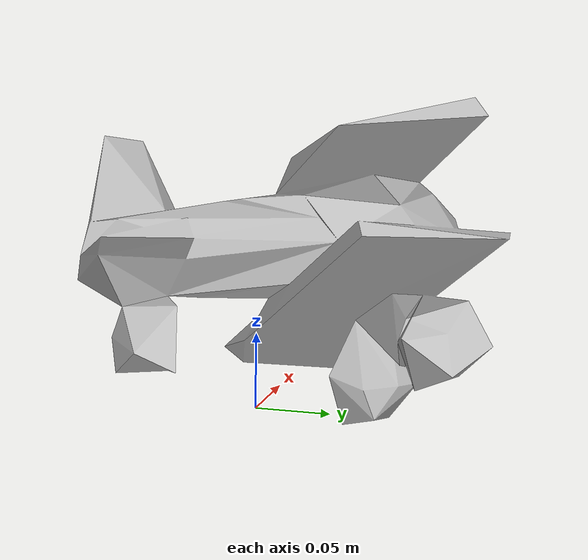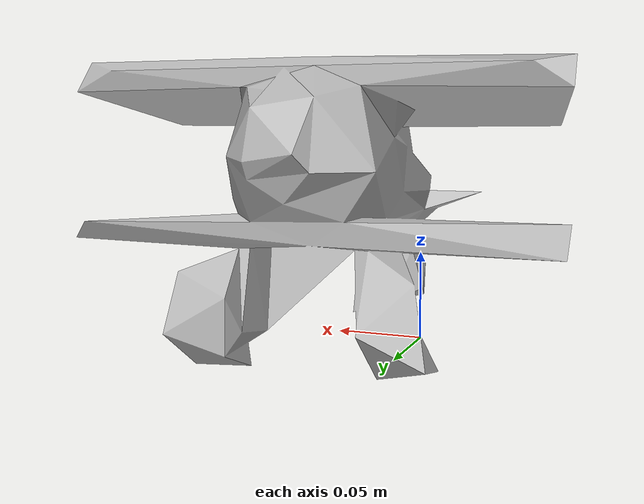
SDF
<?xml version='1.0'?>
<sdf version="1.4">
  <model name="072-a_toy_airplane">
    <static>false</static>
    <link name="link">
      <inertial>
        <pose>0.03641376852445169 0.02111059426629102 0.08523355111686143 0.07150627176419652 -1.4369397943421447 -1.5848932619775498</pose>
        <mass>0.6385413702222174</mass>
        <inertia>
          <ixx>0.004448963631594207</ixx>
          <ixy>-1.1624738275041307e-20</ixy>
          <ixz>2.137960277751723e-19</ixz>
          <iyy>0.0035566842393737657</iyy>
          <iyz>-5.545044284453274e-20</iyz>
          <izz>0.003109709892472095</izz>
        </inertia>
      </inertial>
      <collision name="collision">
        <geometry>
          <mesh>
            <!-- Use a downsampled mesh for collisions -->
            <uri>model:///072-a_toy_airplane/072-a_toy_airplane_250_collision.stl</uri>
	        </mesh>
        </geometry>
        <surface>
      </surface>
      </collision>
      <visual name="visual">
        <geometry>
          <mesh>
            <uri>model:///072-a_toy_airplane/textured.obj</uri>
	        </mesh>
        </geometry>
        <material>
          <script>
            <uri>model:///072-a_toy_airplane/072-a_toy_airplane.material</uri>
            <name>072-a_toy_airplane</name>
          </script>
        </material>
      </visual>
    </link>
  </model>
</sdf>
